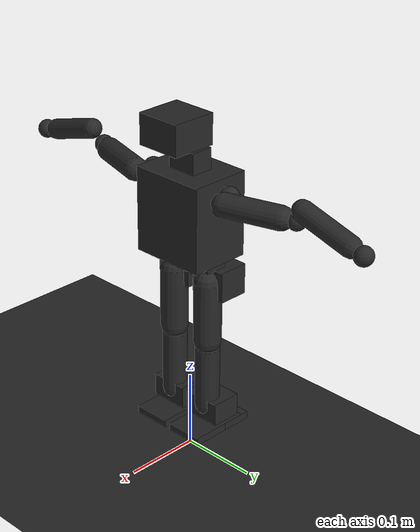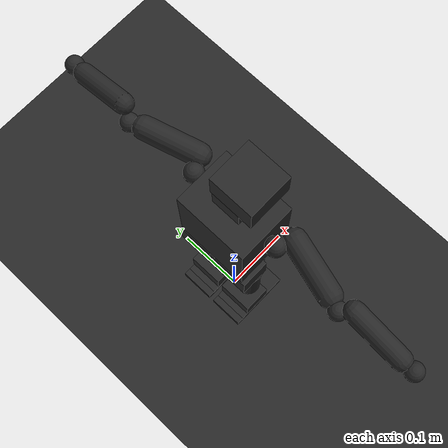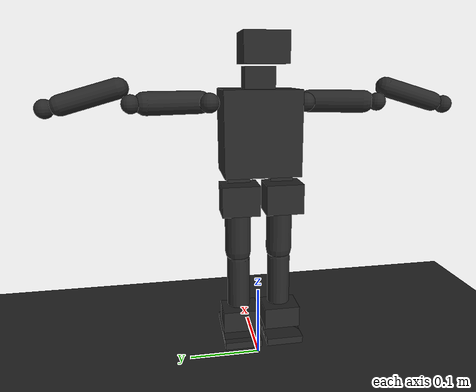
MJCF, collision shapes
<mujoco model="ainex_mjx">
  <!-- MJX-optimized version: primitive collision geoms, mesh visuals only -->
  <compiler angle="radian" meshdir="../meshes/"
            autolimits="true"/>

  <option timestep="0.004" gravity="0 0 -9.81" iterations="1" ls_iterations="5">
    <flag eulerdamp="disable"/>
  </option>

  <default>
    <joint limited="true" damping="1.0" armature="0.04" frictionloss="0.03"
           range="-2.09 2.09"/>
    <geom contype="0" conaffinity="0" friction="0.6" rgba="0.15 0.15 0.15 1"/>
    <site group="5" type="sphere"/>
    <position kp="50" ctrlrange="-3.14159 3.14159" forcerange="-6 6"/>
    <default class="collision">
      <geom group="3" contype="1" conaffinity="1"/>
      <default class="foot">
        <geom mass="0" type="box" friction="1.0 0.02 0.01" contype="1" conaffinity="1"/>
      </default>
    </default>
    <default class="visual">
      <geom type="mesh" contype="0" conaffinity="0" group="2" rgba="0.2 0.2 0.2 1"/>
    </default>
  </default>

  <asset>
    <texture type="skybox" builtin="gradient" rgb1="0.3 0.5 0.7" rgb2="0 0 0" width="512" height="512"/>
    <texture name="grid" type="2d" builtin="checker" rgb1="1 1 1" rgb2="1 1 1"
             width="300" height="300" mark="edge" markrgb="0 0 0"/>
    <material name="grid" texture="grid" texrepeat="5 5" texuniform="true" reflectance="0"/>
    <material name="dark" rgba="0.2 0.2 0.2 1"/>

    <!-- Visual meshes (not used for collision in MJX) -->
    <mesh name="body_link" file="body_link.STL"/>
    <mesh name="r_hip_yaw_link" file="r_hip_yaw_link.STL"/>
    <mesh name="r_hip_roll_link" file="r_hip_roll_link.STL"/>
    <mesh name="r_hip_pitch_link" file="r_hip_pitch_link.STL"/>
    <mesh name="r_knee_link" file="r_knee_link.STL"/>
    <mesh name="r_ank_pitch_link" file="r_ank_pitch_link.STL"/>
    <mesh name="r_ank_roll_link" file="r_ank_roll_link.STL"/>
    <mesh name="l_hip_yaw_link" file="l_hip_yaw_link.STL"/>
    <mesh name="l_hip_roll_link" file="l_hip_roll_link.STL"/>
    <mesh name="l_hip_pitch_link" file="l_hip_pitch_link.STL"/>
    <mesh name="l_knee_link" file="l_knee_link.STL"/>
    <mesh name="l_ank_pitch_link" file="l_ank_pitch_link.STL"/>
    <mesh name="l_ank_roll_link" file="l_ank_roll_link.STL"/>
    <mesh name="head_pan_link" file="head_pan_link.STL"/>
    <mesh name="head_tilt_link" file="head_tilt_link.STL"/>
    <mesh name="r_sho_pitch_link" file="r_sho_pitch_link.STL"/>
    <mesh name="r_sho_roll_link" file="r_sho_roll_link.STL"/>
    <mesh name="r_el_pitch_link" file="r_el_pitch_link.STL"/>
    <mesh name="r_el_yaw_link" file="r_el_yaw_link.STL"/>
    <mesh name="r_gripper_link" file="r_gripper_link.STL"/>
    <mesh name="l_sho_pitch_link" file="l_sho_pitch_link.STL"/>
    <mesh name="l_sho_roll_link" file="l_sho_roll_link.STL"/>
    <mesh name="l_el_pitch_link" file="l_el_pitch_link.STL"/>
    <mesh name="l_el_yaw_link" file="l_el_yaw_link.STL"/>
    <mesh name="l_gripper_link" file="l_gripper_link.STL"/>
  </asset>

  <worldbody>
    <light name="spotlight" mode="targetbodycom" target="body_link" pos="3 0 2"/>
    <geom name="floor" type="plane" size="0 0 0.01" material="grid" contype="1" conaffinity="0"/>

    <!-- Robot -->
    <body name="base_link" pos="0 0 0.28">
      <freejoint name="root"/>

      <body name="body_link">
        <inertial pos="0.004 0 0.050" mass="0.743"
                  fullinertia="0.00122 0.00104 0.00109 0 -5.3e-05 0"/>
        <!-- Visual mesh -->
        <geom class="visual" mesh="body_link"/>
        <!-- Collision: simplified box for torso -->
        <geom class="collision" type="box" size="0.04 0.05 0.055" pos="0 0 0.05"/>

        <site name="imu" pos="0 0 0.05" size="0.005"/>

        <!-- ===== RIGHT LEG ===== -->
        <body name="r_hip_yaw_link" pos="0 -0.029 0">
          <joint name="r_hip_yaw" axis="0 0 -1"/>
          <inertial pos="0 0.001 -0.001" mass="0.032"
                    fullinertia="1.76e-05 2.27e-05 9.05e-06 0 0 0"/>
          <geom class="visual" mesh="r_hip_yaw_link"/>
          <geom class="collision" type="box" size="0.015 0.015 0.015" pos="0 0 0"/>

          <body name="r_hip_roll_link" pos="-0.01955 0 -0.0255">
            <joint name="r_hip_roll" axis="-1 0 0"/>
            <inertial pos="0.001 -0.001 -0.013" mass="0.120"
                      fullinertia="2.9e-05 7.3e-05 6.1e-05 0 0 0"/>
            <geom class="visual" mesh="r_hip_roll_link"/>
            <geom class="collision" type="box" size="0.02 0.025 0.02" pos="0 0 -0.01"/>

            <body name="r_hip_pitch_link" pos="0.01904 -0.02 0">
              <joint name="r_hip_pitch" axis="0 -1 0"/>
              <inertial pos="0.014 0.019 -0.073" mass="0.1065"
                        fullinertia="0.00011 0.00011 4.2e-05 0 -8e-06 0"/>
              <geom class="visual" mesh="r_hip_pitch_link"/>
              <!-- Upper leg: capsule -->
              <geom class="collision" type="capsule" size="0.018" fromto="0 0.02 -0.01 0 0.02 -0.09"/>

              <body name="r_knee_link" pos="-0.000372 0.00005 -0.09689">
                <joint name="r_knee" axis="0 -1 0"/>
                <inertial pos="0.003 0.020 -0.043" mass="0.045"
                          fullinertia="6.7e-05 5.5e-05 2.1e-05 0 0 0"/>
                <geom class="visual" mesh="r_knee_link"/>
                <!-- Lower leg: capsule -->
                <geom class="collision" type="capsule" size="0.016" fromto="0 0.02 -0.005 0 0.02 -0.085"/>

                <body name="r_ank_pitch_link" pos="0.001037 0 -0.08908">
                  <joint name="r_ank_pitch" axis="0 1 0"/>
                  <inertial pos="-0.018 0.020 0.013" mass="0.120"
                            fullinertia="2.9e-05 7.4e-05 6.1e-05 0 0 0"/>
                  <geom class="visual" mesh="r_ank_pitch_link"/>
                  <geom class="collision" type="box" size="0.02 0.025 0.015" pos="-0.01 0.02 0"/>

                  <body name="r_ank_roll_link" pos="-0.01904 0.02 0">
                    <joint name="r_ank_roll" axis="1 0 0"/>
                    <inertial pos="0.029 -0.013 -0.018" mass="0.0675"
                              fullinertia="4.2e-05 9.2e-05 1.3e-04 0 0 0"/>
                    <geom class="visual" mesh="r_ank_roll_link"/>
                    <!-- Foot collision boxes -->
                    <site name="right_foot" pos="0.02 0 -0.02" size="0.005"/>
                    <geom name="r_foot1" class="foot" size="0.04 0.025 0.005" pos="0.02 0 -0.025"/>
                    <geom name="r_foot2" class="foot" size="0.02 0.025 0.005" pos="-0.01 0 -0.025"/>
                  </body>
                </body>
              </body>
            </body>
          </body>
        </body>

        <!-- ===== LEFT LEG ===== -->
        <body name="l_hip_yaw_link" pos="0 0.029 0">
          <joint name="l_hip_yaw" axis="0 0 -1"/>
          <inertial pos="0 -0.001 -0.001" mass="0.032"
                    fullinertia="1.76e-05 2.27e-05 9.05e-06 0 0 0"/>
          <geom class="visual" mesh="l_hip_yaw_link"/>
          <geom class="collision" type="box" size="0.015 0.015 0.015" pos="0 0 0"/>

          <body name="l_hip_roll_link" pos="-0.01955 0 -0.0255">
            <joint name="l_hip_roll" axis="-1 0 0"/>
            <inertial pos="0.001 0.001 -0.013" mass="0.120"
                      fullinertia="2.9e-05 7.3e-05 6.1e-05 0 0 0"/>
            <geom class="visual" mesh="l_hip_roll_link"/>
            <geom class="collision" type="box" size="0.02 0.025 0.02" pos="0 0 -0.01"/>

            <body name="l_hip_pitch_link" pos="0.019037 0.02 0">
              <joint name="l_hip_pitch" axis="0 1 0"/>
              <inertial pos="0.014 -0.019 -0.073" mass="0.1065"
                        fullinertia="0.00011 0.00011 4.2e-05 0 -8e-06 0"/>
              <geom class="visual" mesh="l_hip_pitch_link"/>
              <geom class="collision" type="capsule" size="0.018" fromto="0 -0.02 -0.01 0 -0.02 -0.09"/>

              <body name="l_knee_link" pos="-0.00037204 -0.00005 -0.096886">
                <joint name="l_knee" axis="0 1 0"/>
                <inertial pos="0.003 -0.020 -0.043" mass="0.045"
                          fullinertia="6.7e-05 5.5e-05 2.1e-05 0 0 0"/>
                <geom class="visual" mesh="l_knee_link"/>
                <geom class="collision" type="capsule" size="0.016" fromto="0 -0.02 -0.005 0 -0.02 -0.085"/>

                <body name="l_ank_pitch_link" pos="0.001037 0 -0.089077">
                  <joint name="l_ank_pitch" axis="0 -1 0"/>
                  <inertial pos="-0.018 -0.020 0.013" mass="0.120"
                            fullinertia="2.9e-05 7.4e-05 6.1e-05 0 0 0"/>
                  <geom class="visual" mesh="l_ank_pitch_link"/>
                  <geom class="collision" type="box" size="0.02 0.025 0.015" pos="-0.01 -0.02 0"/>

                  <body name="l_ank_roll_link" pos="-0.019037 -0.02 0">
                    <joint name="l_ank_roll" axis="1 0 0"/>
                    <inertial pos="0.029 0.013 -0.018" mass="0.0675"
                              fullinertia="4.2e-05 9.2e-05 1.3e-04 0 0 0"/>
                    <geom class="visual" mesh="l_ank_roll_link"/>
                    <site name="left_foot" pos="0.02 0 -0.02" size="0.005"/>
                    <geom name="l_foot1" class="foot" size="0.04 0.025 0.005" pos="0.02 0 -0.025"/>
                    <geom name="l_foot2" class="foot" size="0.02 0.025 0.005" pos="-0.01 0 -0.025"/>
                  </body>
                </body>
              </body>
            </body>
          </body>
        </body>

        <!-- ===== HEAD ===== -->
        <body name="head_pan_link" pos="-0.0041 0 0.1078">
          <joint name="head_pan" axis="0 0 -1"/>
          <inertial pos="0.005 0 0.014" mass="0.00767"
                    fullinertia="2.1e-06 9.9e-07 1.8e-06 0 0 0"/>
          <geom class="visual" mesh="head_pan_link"/>
          <geom class="collision" type="box" size="0.015 0.02 0.015" pos="0.005 0 0.01"/>

          <body name="head_tilt_link" pos="0.00905 -0.01857 0.02816">
            <joint name="head_tilt" axis="0 -1 0"/>
            <inertial pos="0.011 0.019 0.022" mass="0.02622"
                      fullinertia="6.2e-06 6.3e-06 6.9e-06 0 0 0"/>
            <geom class="visual" mesh="head_tilt_link"/>
            <geom class="collision" type="box" size="0.03 0.03 0.02" pos="0.01 0.01 0.02"/>
            <site name="camera_eye" pos="0.03 0 0.01" size="0.005"/>
            <camera name="head_cam" pos="0.03 0 0.01" fovy="49.1" mode="fixed"/>
          </body>
        </body>

        <!-- ===== RIGHT ARM ===== -->
        <body name="r_sho_pitch_link" pos="0 -0.05249 0.08745">
          <joint name="r_sho_pitch" axis="0 -1 0" damping="0.5" frictionloss="0.2"/>
          <inertial pos="0 -0.011 0" mass="0.0128"
                    fullinertia="2.1e-06 3.9e-06 5e-06 0 0 0"/>
          <geom class="visual" mesh="r_sho_pitch_link"/>
          <geom class="collision" type="sphere" size="0.013" pos="0 -0.011 0"/>

          <body name="r_sho_roll_link" pos="0.020003 -0.02151 0">
            <joint name="r_sho_roll" axis="1 0 0" damping="0.5" frictionloss="0.2"/>
            <inertial pos="-0.021 -0.028 0" mass="0.121"
                      fullinertia="7.3e-05 2.5e-05 7.5e-05 9e-06 0 0"/>
            <geom class="visual" mesh="r_sho_roll_link"/>
            <geom class="collision" type="capsule" size="0.015" fromto="0 0 0 -0.02 -0.07 0"/>

            <body name="r_el_pitch_link" pos="-0.020003 -0.07411 0">
              <joint name="r_el_pitch" axis="0 -1 0" damping="0.5" frictionloss="0.2"/>
              <inertial pos="-0.007 -0.013 0" mass="0.045"
                        fullinertia="8e-06 8.3e-06 1.1e-05 0 0 0"/>
              <geom class="visual" mesh="r_el_pitch_link"/>
              <geom class="collision" type="sphere" size="0.012" pos="-0.007 -0.013 0"/>

              <body name="r_el_yaw_link" pos="0.000398 -0.01702 0.01907">
                <joint name="r_el_yaw" axis="0 0 1" damping="0.5" frictionloss="0.2"/>
                <inertial pos="0 -0.057 -0.014" mass="0.102"
                          fullinertia="1.4e-04 3.1e-05 1.4e-04 0 0 -1.3e-05"/>
                <geom class="visual" mesh="r_el_yaw_link"/>
                <geom class="collision" type="capsule" size="0.013" fromto="0 -0.01 0 0 -0.08 -0.02"/>

                <body name="r_gripper_link" pos="0.01989 -0.08924 -0.01907">
                  <joint name="r_gripper" axis="1 0 0" damping="0.5" frictionloss="0.2"/>
                  <inertial pos="-0.019 -0.009 -0.005" mass="0.0135"
                            fullinertia="3.3e-06 4.5e-06 6e-06 0 0 0"/>
                  <geom class="visual" mesh="r_gripper_link"/>
                  <geom class="collision" type="sphere" size="0.012" pos="-0.019 -0.009 -0.005"/>
                </body>
              </body>
            </body>
          </body>
        </body>

        <!-- ===== LEFT ARM ===== -->
        <body name="l_sho_pitch_link" pos="0 0.052491 0.087448">
          <joint name="l_sho_pitch" axis="0 -1 0" damping="0.5" frictionloss="0.2"/>
          <inertial pos="0 0.011 0" mass="0.0128"
                    fullinertia="2.1e-06 3.9e-06 5e-06 0 0 0"/>
          <geom class="visual" mesh="l_sho_pitch_link"/>
          <geom class="collision" type="sphere" size="0.013" pos="0 0.011 0"/>

          <body name="l_sho_roll_link" pos="0.020003 0.021507 0">
            <joint name="l_sho_roll" axis="1 0 0" damping="0.5" frictionloss="0.2"/>
            <inertial pos="-0.021 0.028 0" mass="0.121"
                      fullinertia="7.3e-05 2.5e-05 7.5e-05 -9e-06 0 0"/>
            <geom class="visual" mesh="l_sho_roll_link"/>
            <geom class="collision" type="capsule" size="0.015" fromto="0 0 0 -0.02 0.07 0"/>

            <body name="l_el_pitch_link" pos="-0.020003 0.074109 0">
              <joint name="l_el_pitch" axis="0 -1 0" damping="0.5" frictionloss="0.2"/>
              <inertial pos="-0.007 0.013 0" mass="0.045"
                        fullinertia="8e-06 8.3e-06 1.1e-05 0 0 0"/>
              <geom class="visual" mesh="l_el_pitch_link"/>
              <geom class="collision" type="sphere" size="0.012" pos="-0.007 0.013 0"/>

              <body name="l_el_yaw_link" pos="0.000395 0.017019 0.019072">
                <joint name="l_el_yaw" axis="0 0 1" damping="0.5" frictionloss="0.2"/>
                <inertial pos="0 0.057 -0.014" mass="0.102"
                          fullinertia="1.4e-04 3.1e-05 1.4e-04 0 0 1.3e-05"/>
                <geom class="visual" mesh="l_el_yaw_link"/>
                <geom class="collision" type="capsule" size="0.013" fromto="0 0.01 0 0 0.08 -0.02"/>

                <body name="l_gripper_link" pos="0.019893 0.089232 -0.019072">
                  <joint name="l_gripper" axis="1 0 0" damping="0.5" frictionloss="0.2"/>
                  <inertial pos="-0.019 0.009 -0.005" mass="0.0135"
                            fullinertia="3.3e-06 4.5e-06 6e-06 0 0 0"/>
                  <geom class="visual" mesh="l_gripper_link"/>
                  <geom class="collision" type="sphere" size="0.012" pos="-0.019 0.009 -0.005"/>
                </body>
              </body>
            </body>
          </body>
        </body>

      </body><!-- /body_link -->
    </body><!-- /base_link -->
  </worldbody>

  <!-- Exclude adjacent-link self-collision -->
  <contact>
    <exclude body1="body_link" body2="r_hip_yaw_link"/>
    <exclude body1="body_link" body2="l_hip_yaw_link"/>
    <exclude body1="body_link" body2="head_pan_link"/>
    <exclude body1="body_link" body2="r_sho_pitch_link"/>
    <exclude body1="body_link" body2="l_sho_pitch_link"/>
    <exclude body1="r_hip_yaw_link" body2="r_hip_roll_link"/>
    <exclude body1="r_hip_roll_link" body2="r_hip_pitch_link"/>
    <exclude body1="r_hip_pitch_link" body2="r_knee_link"/>
    <exclude body1="r_knee_link" body2="r_ank_pitch_link"/>
    <exclude body1="r_ank_pitch_link" body2="r_ank_roll_link"/>
    <exclude body1="l_hip_yaw_link" body2="l_hip_roll_link"/>
    <exclude body1="l_hip_roll_link" body2="l_hip_pitch_link"/>
    <exclude body1="l_hip_pitch_link" body2="l_knee_link"/>
    <exclude body1="l_knee_link" body2="l_ank_pitch_link"/>
    <exclude body1="l_ank_pitch_link" body2="l_ank_roll_link"/>
    <exclude body1="head_pan_link" body2="head_tilt_link"/>
    <exclude body1="r_sho_pitch_link" body2="r_sho_roll_link"/>
    <exclude body1="r_sho_roll_link" body2="r_el_pitch_link"/>
    <exclude body1="r_el_pitch_link" body2="r_el_yaw_link"/>
    <exclude body1="r_el_yaw_link" body2="r_gripper_link"/>
    <exclude body1="l_sho_pitch_link" body2="l_sho_roll_link"/>
    <exclude body1="l_sho_roll_link" body2="l_el_pitch_link"/>
    <exclude body1="l_el_pitch_link" body2="l_el_yaw_link"/>
    <exclude body1="l_el_yaw_link" body2="l_gripper_link"/>
  </contact>

  <!-- Position-controlled actuators (24 DOF) -->
  <actuator>
    <!-- Legs -->
    <position name="r_hip_yaw_act"   joint="r_hip_yaw"   kp="50"/>
    <position name="r_hip_roll_act"  joint="r_hip_roll"  kp="50"/>
    <position name="r_hip_pitch_act" joint="r_hip_pitch" kp="50"/>
    <position name="r_knee_act"      joint="r_knee"      kp="50"/>
    <position name="r_ank_pitch_act" joint="r_ank_pitch" kp="50"/>
    <position name="r_ank_roll_act"  joint="r_ank_roll"  kp="50"/>
    <position name="l_hip_yaw_act"   joint="l_hip_yaw"   kp="50"/>
    <position name="l_hip_roll_act"  joint="l_hip_roll"  kp="50"/>
    <position name="l_hip_pitch_act" joint="l_hip_pitch" kp="50"/>
    <position name="l_knee_act"      joint="l_knee"      kp="50"/>
    <position name="l_ank_pitch_act" joint="l_ank_pitch" kp="50"/>
    <position name="l_ank_roll_act"  joint="l_ank_roll"  kp="50"/>
    <!-- Head -->
    <position name="head_pan_act"  joint="head_pan"  kp="10"/>
    <position name="head_tilt_act" joint="head_tilt" kp="10"/>
    <!-- Arms -->
    <position name="r_sho_pitch_act" joint="r_sho_pitch" kp="10"/>
    <position name="r_sho_roll_act"  joint="r_sho_roll"  kp="10"/>
    <position name="r_el_pitch_act"  joint="r_el_pitch"  kp="10"/>
    <position name="r_el_yaw_act"    joint="r_el_yaw"    kp="10"/>
    <position name="r_gripper_act"   joint="r_gripper"   kp="10"/>
    <position name="l_sho_pitch_act" joint="l_sho_pitch" kp="10"/>
    <position name="l_sho_roll_act"  joint="l_sho_roll"  kp="10"/>
    <position name="l_el_pitch_act"  joint="l_el_pitch"  kp="10"/>
    <position name="l_el_yaw_act"    joint="l_el_yaw"    kp="10"/>
    <position name="l_gripper_act"   joint="l_gripper"   kp="10"/>
  </actuator>

  <!-- Sensors (Playground pattern) -->
  <sensor>
    <accelerometer name="accelerometer" site="imu"/>
    <gyro name="gyro" site="imu"/>
    <framezaxis name="upvector" objtype="body" objname="body_link"/>
    <framelinvel name="global_linvel" objtype="site" objname="imu"/>
    <frameangvel name="global_angvel" objtype="site" objname="imu"/>
    <velocimeter name="local_linvel" site="imu"/>
    <framequat name="body_quat" objtype="body" objname="body_link"/>
    <subtreecom name="com" body="base_link"/>
    <framelinvel name="left_foot_global_linvel" objtype="site" objname="left_foot"/>
    <framelinvel name="right_foot_global_linvel" objtype="site" objname="right_foot"/>
    <!-- Floor contact sensors -->
    <contact name="l_foot1_floor_found" geom1="l_foot1" geom2="floor" reduce="mindist" num="1" data="found"/>
    <contact name="l_foot2_floor_found" geom1="l_foot2" geom2="floor" reduce="mindist" num="1" data="found"/>
    <contact name="r_foot1_floor_found" geom1="r_foot1" geom2="floor" reduce="mindist" num="1" data="found"/>
    <contact name="r_foot2_floor_found" geom1="r_foot2" geom2="floor" reduce="mindist" num="1" data="found"/>
  </sensor>

  <!-- Keyframes -->
  <keyframe>
    <!-- Standing straight: root(7) + joints(24) = 31 qpos -->
    <key name="stand"
         qpos="0 0 0.24 1 0 0 0
               0 0 0 0 0 0
               0 0 0 0 0 0
               0 0
               0 1.403 0 1.226 0
               0 -1.403 0 -1.226 0"/>
    <key name="stand_bent_knees"
         qpos="0 0 0.24 1 0 0 0
               0 0 -0.3 0.6 -0.3 0
               0 0 0.3 -0.6 0.3 0
               0 0
               0 1.403 0 1.226 0
               0 -1.403 0 -1.226 0"/>
    <!-- Fallen poses for getup training -->
    <key name="face_down"
         qpos="0 0 0.08 0 0 1 0
               0 0 0 0 0 0
               0 0 0 0 0 0
               0 0
               0 1.403 0 1.226 0
               0 -1.403 0 -1.226 0"/>
    <key name="face_up"
         qpos="0 0 0.08 0 1 0 0
               0 0 0 0 0 0
               0 0 0 0 0 0
               0 0
               0 1.403 0 1.226 0
               0 -1.403 0 -1.226 0"/>
    <key name="side_right"
         qpos="0 0 0.07 0.707 0.707 0 0
               0 0 0 0 0 0
               0 0 0 0 0 0
               0 0
               0 1.403 0 1.226 0
               0 -1.403 0 -1.226 0"/>
    <key name="side_left"
         qpos="0 0 0.07 0.707 -0.707 0 0
               0 0 0 0 0 0
               0 0 0 0 0 0
               0 0
               0 1.403 0 1.226 0
               0 -1.403 0 -1.226 0"/>
  </keyframe>

</mujoco>
